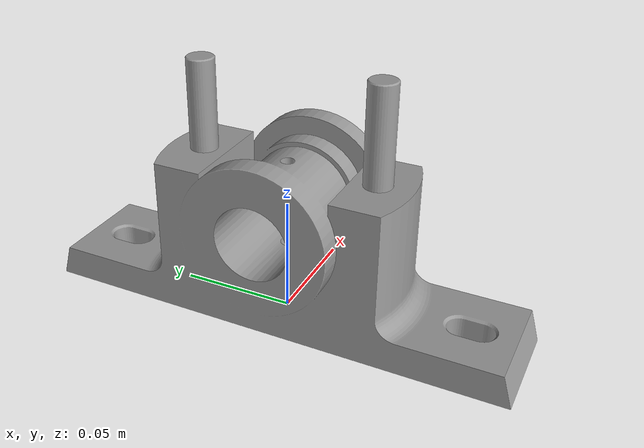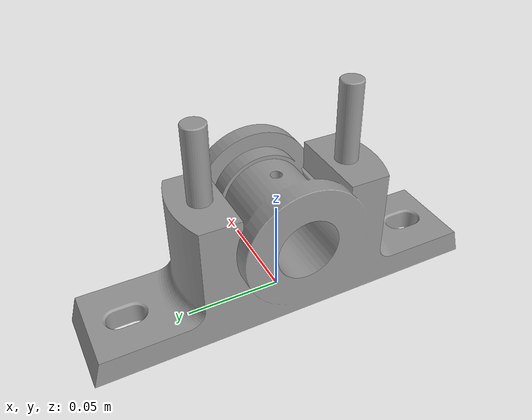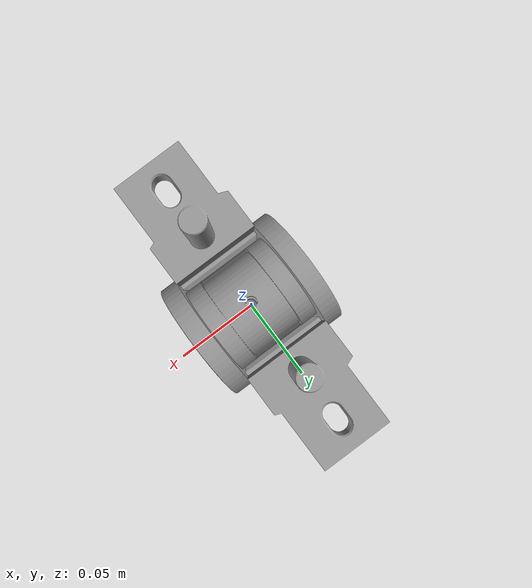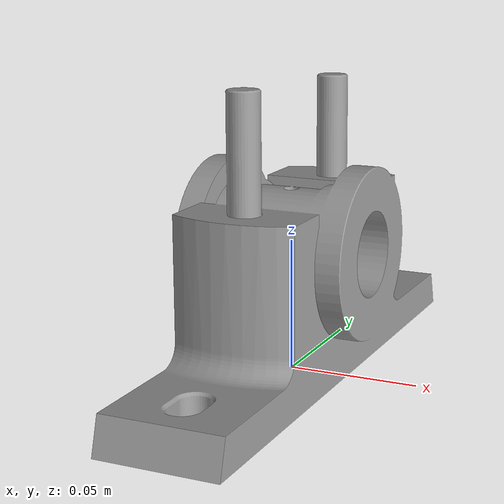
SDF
<?xml version='1.0'?>
<sdf version='1.6'>
  <model name="pillow_block">

<static>true</static>
<link name= "base">
<pose> 0.0 0.0 0.02 0 0 0 </pose>
   <inertial>
        <mass>0.265</mass>
    </inertial>
<collision name= "base collision">
 <geometry>
   <mesh>
     <uri>model://pillow_block/meshes/plummer_block_base.obj</uri>
      <scale> 1 1 1 </scale>
   </mesh>
</geometry>
<surface>
     <contact>
          <poissons_ratio>0.29</poissons_ratio>
            <elastic_modulus>200e+09</elastic_modulus>
            <ode>
              <kp>900000</kp>
              <kd>1</kd>
              <max_vel>1.0</max_vel>
              <min_depth>0.001</min_depth>
            </ode>
      </contact>
          <friction>
            <ode>
              <mu>1.0</mu>
              <mu2>1.0</mu2>
            </ode>
          </friction>
  </surface>

</collision>

<visual name = "visual base">
  <geometry>
   <mesh>
     <uri>model://pillow_block/meshes/plummer_block_base.obj</uri>
      <scale> 1 1 1 </scale>
   </mesh>
</geometry>
<material>
          <script>
            <uri>file://media/materials/scripts/gazebo.material</uri>
            <name>Gazebo/Grey</name>
          </script>
        </material>
</visual>
</link>

<link name="world_fix">
    <parent>world</parent>
    <child>pillow_block::base</child>
</link>

  </model>
</sdf>
